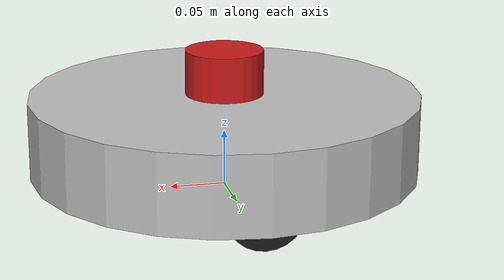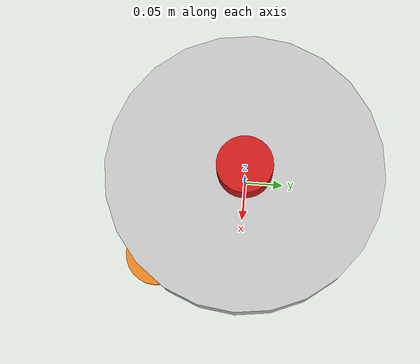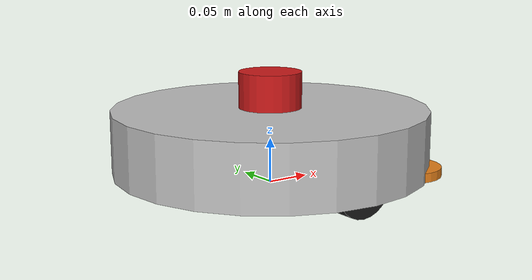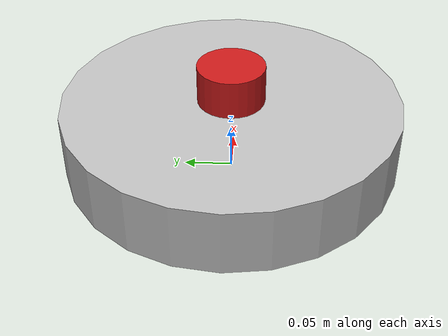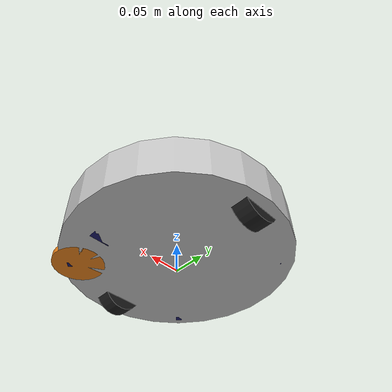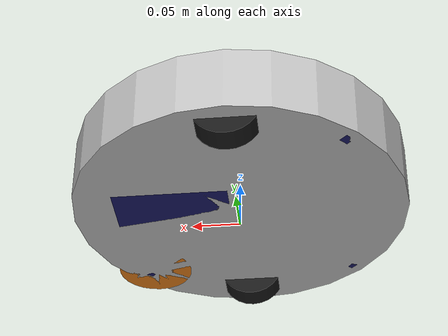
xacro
<?xml version="1.0"?>
<robot xmlns:xacro="http://www.ros.org/wiki/xacro" name="cleaning_robot">

  <!-- Top-level xacro for the autonomous cleaning robot.                  -->
  <!-- Differential-drive base, 350 mm diameter, ~70 mm tall, with a 2D    -->
  <!-- LiDAR, IMU, 4 cliff sensors, and a cleaning unit (vacuum + side     -->
  <!-- brush).                                                             -->
  <!-- To edit robot dimensions/mount positions once the robot is built,   -->
  <!-- edit urdf/common_properties.xacro == that is the single file with   -->
  <!-- all the physical parameters. This file only wires the sub-modules   -->
  <!-- together and should rarely need changes.                           -->
  <!-- Full TF tree:                                                      -->
  <!--   base_footprint                                                    -->
  <!--     to base_link                                                    -->
  <!--          to left_wheel_link                                        -->
  <!--          to right_wheel_link                                       -->
  <!--          to caster_wheel_link                                      -->
  <!--          to laser                                                  -->
  <!--          to imu_link                                               -->
  <!--          to cliff_front_left_link                                  -->
  <!--          to cliff_front_right_link                                 -->
  <!--          to cliff_rear_left_link                                   -->
  <!--          to cliff_rear_right_link                                  -->
  <!--          to vacuum_link                                            -->
  <!--          to side_brush_link                                       -->

  <xacro:include filename="$(find robot_description)/urdf/common_properties.xacro"/>
  <xacro:include filename="$(find robot_description)/urdf/base.xacro"/>
  <xacro:include filename="$(find robot_description)/urdf/lidar.xacro"/>
  <xacro:include filename="$(find robot_description)/urdf/imu.xacro"/>
  <xacro:include filename="$(find robot_description)/urdf/cliff_sensors.xacro"/>
  <xacro:include filename="$(find robot_description)/urdf/cleaning_unit.xacro"/>

</robot>

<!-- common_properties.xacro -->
<robot xmlns:xacro="http://www.ros.org/wiki/xacro">

  <!-- EDIT THIS FILE once the robot is fully built to match real hardware. -->
  <!-- All dimensions are in metres, masses in kg, angles in radians.      -->

  <!-- ================ Chassis (main robot body) ================ -->
  <!-- Robot is a round vacuum-style base: 350 mm diameter, ~70 mm tall. -->
  <xacro:property name="base_diameter"   value="0.350"/>   <!-- measured base diameter -->
  <xacro:property name="base_radius"     value="${base_diameter / 2}"/>
  <xacro:property name="base_height"     value="0.070"/>   <!-- overall chassis height -->
  <xacro:property name="base_mass"       value="2.0"/>     <!-- TODO: update with real measured mass (kg) -->

  <xacro:property name="base_ground_clearance" value="0.015"/> <!-- TODO: measure real ground clearance under chassis -->

  <!-- ================ Wheels (differential drive) ================ -->
  <!-- TODO: replace with real wheel dimensions once motors/wheels are chosen. -->
  <xacro:property name="wheel_radius"    value="0.034"/>
  <xacro:property name="wheel_width"     value="0.026"/>
  <xacro:property name="wheel_mass"      value="0.040"/>

  <xacro:property name="wheel_separation" value="0.290"/>

  <!-- Fore/aft offset of the wheel axle from the chassis centre (base_link).
       0.0 = wheels mounted on the robot's centreline (typical for a round
       vacuum-style differential-drive base). -->
  <xacro:property name="wheel_x_offset"  value="0.0"/>

  <xacro:property name="wheel_z_offset"  value="${wheel_radius - base_ground_clearance}"/>

  <!-- ================ Caster wheel (passive support wheel) ================ -->
  <xacro:property name="caster_radius"   value="0.015"/>
  <xacro:property name="caster_mass"     value="0.030"/>
  <xacro:property name="caster_x_offset" value="${(base_radius - 0.03)}"/> <!-- placed toward the rear -->
  <xacro:property name="caster_z_offset" value="${caster_radius - base_ground_clearance}"/>

  <!-- ================ LiDAR (2D) ================ -->
  <xacro:property name="lidar_radius"    value="0.035"/>
  <xacro:property name="lidar_height"    value="0.040"/>
  <xacro:property name="lidar_mass"      value="0.170"/>  <!-- approx. RPLIDAR C1 mass -->
  <xacro:property name="lidar_x_offset"  value="0.0"/>
  <xacro:property name="lidar_y_offset"  value="0.0"/>
  <xacro:property name="lidar_z_offset"  value="${(base_height / 2) + (lidar_height / 2)}"/>

  <!-- ================ IMU ================ -->
  <!-- TODO: update to the exact IMU mounting position. Mounting the IMU as
       close to the robot's centre of rotation (base_link) as possible
       generally gives the best odometry fusion results. -->
  <xacro:property name="imu_size"        value="0.020"/>  <!-- small cube approximation -->
  <xacro:property name="imu_mass"        value="0.010"/>
  <xacro:property name="imu_x_offset"    value="0.0"/>
  <xacro:property name="imu_y_offset"    value="0.0"/>
  <xacro:property name="imu_z_offset"    value="0.01"/>

  <!-- ================ Cliff sensors (IR / ToF drop sensors) ================ -->
  <xacro:property name="cliff_size"          value="0.010"/> <!-- small cube approximation -->
  <xacro:property name="cliff_mass"          value="0.005"/>
  <xacro:property name="cliff_mount_radius"  value="${base_radius - 0.015}"/> <!-- near chassis edge -->
  <xacro:property name="cliff_z_offset"      value="${-(base_height / 2) + 0.005}"/> <!-- near chassis underside -->

  <!-- Angles (from +X / front, counter-clockwise) for the 4 cliff sensors. -->
  <xacro:property name="cliff_front_left_angle"   value="${radians(45)}"/>
  <xacro:property name="cliff_front_right_angle"  value="${radians(-45)}"/>
  <xacro:property name="cliff_rear_left_angle"    value="${radians(135)}"/>
  <xacro:property name="cliff_rear_right_angle"   value="${radians(-135)}"/>

  <!-- ================ Cleaning unit: vacuum + side brush ================ -->
  <!-- TODO: update once the vacuum housing and side brush motor are finalised. -->
  <xacro:property name="vacuum_length"   value="0.120"/>
  <xacro:property name="vacuum_width"    value="0.080"/>
  <xacro:property name="vacuum_height"   value="0.040"/>
  <xacro:property name="vacuum_mass"     value="0.200"/>
  <!-- Vacuum inlet is mounted centrally underneath, toward the front. -->
  <xacro:property name="vacuum_x_offset" value="${base_radius * 0.4}"/>
  <xacro:property name="vacuum_y_offset" value="0.0"/>
  <xacro:property name="vacuum_z_offset" value="${-(base_height / 2) + (vacuum_height / 2)}"/>

  <xacro:property name="side_brush_radius" value="0.040"/>
  <xacro:property name="side_brush_height" value="0.010"/>
  <xacro:property name="side_brush_mass"   value="0.030"/>
  <xacro:property name="side_brush_x_offset" value="${base_radius * 0.6}"/>
  <xacro:property name="side_brush_y_offset" value="${-(base_radius * 0.6)}"/>  <!-- negative = right side -->
  <xacro:property name="side_brush_z_offset" value="${-(base_height / 2) + (side_brush_height / 2)}"/>

  <!-- ================ Materials (RViz colours only, no physical meaning) ================ -->
  <material name="chassis_grey">
    <color rgba="0.75 0.75 0.75 1.0"/>
  </material>
  <material name="wheel_black">
    <color rgba="0.1 0.1 0.1 1.0"/>
  </material>
  <material name="sensor_dark_blue">
    <color rgba="0.1 0.1 0.4 1.0"/>
  </material>
  <material name="lidar_red">
    <color rgba="0.8 0.1 0.1 1.0"/>
  </material>
  <material name="brush_orange">
    <color rgba="0.9 0.5 0.1 1.0"/>
  </material>

  <!-- ================ Reusable inertia macros ================ -->
  <xacro:macro name="cylinder_inertia" params="mass radius height">
    <inertia
      ixx="${(1/12) * mass * (3*radius*radius + height*height)}" ixy="0.0" ixz="0.0"
      iyy="${(1/12) * mass * (3*radius*radius + height*height)}" iyz="0.0"
      izz="${(1/2) * mass * radius * radius}"/>
  </xacro:macro>

  <xacro:macro name="sphere_inertia" params="mass radius">
    <inertia
      ixx="${(2/5) * mass * radius * radius}" ixy="0.0" ixz="0.0"
      iyy="${(2/5) * mass * radius * radius}" iyz="0.0"
      izz="${(2/5) * mass * radius * radius}"/>
  </xacro:macro>

  <xacro:macro name="box_inertia" params="mass x y z">
    <inertia
      ixx="${(1/12) * mass * (y*y + z*z)}" ixy="0.0" ixz="0.0"
      iyy="${(1/12) * mass * (x*x + z*z)}" iyz="0.0"
      izz="${(1/12) * mass * (x*x + y*y)}"/>
  </xacro:macro>

</robot>

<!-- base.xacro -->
<robot xmlns:xacro="http://www.ros.org/wiki/xacro">

  <!-- Chassis, drive wheels and passive caster wheel.                     -->
  <!-- TF tree produced by this file:                                      -->
  <!--   base_footprint to base_link to left_wheel_link                    -->
  <!--                              \to right_wheel_link                   -->
  <!--                              \to caster_wheel_link                  -->

  <!-- base_footprint: virtual frame on the ground plane, directly below
       base_link. This is the standard REP-105 frame used by nav2 /
       robot_localization as the robot's planar pose reference. -->
  <link name="base_footprint"/>

  <joint name="base_footprint_joint" type="fixed">
    <parent link="base_footprint"/>
    <child link="base_link"/>
    <origin xyz="0 0 ${base_ground_clearance + (base_height / 2)}" rpy="0 0 0"/>
  </joint>

  <!-- base_link: main chassis, modelled as a flat cylinder (disc). -->
  <link name="base_link">
    <visual>
      <origin xyz="0 0 0" rpy="0 0 0"/>
      <geometry>
        <cylinder radius="${base_radius}" length="${base_height}"/>
      </geometry>
      <material name="chassis_grey"/>
    </visual>
    <collision>
      <origin xyz="0 0 0" rpy="0 0 0"/>
      <geometry>
        <cylinder radius="${base_radius}" length="${base_height}"/>
      </geometry>
    </collision>
    <inertial>
      <origin xyz="0 0 0" rpy="0 0 0"/>
      <mass value="${base_mass}"/>
      <xacro:cylinder_inertia mass="${base_mass}" radius="${base_radius}" height="${base_height}"/>
    </inertial>
  </link>

  <!-- ================ Drive wheel macro (left/right) ================ -->
  <!-- reflect = +1 for left wheel, -1 for right wheel -->
  <xacro:macro name="drive_wheel" params="prefix reflect">
    <link name="${prefix}_wheel_link">
      <visual>
        <origin xyz="0 0 0" rpy="${pi/2} 0 0"/>
        <geometry>
          <cylinder radius="${wheel_radius}" length="${wheel_width}"/>
        </geometry>
        <material name="wheel_black"/>
      </visual>
      <collision>
        <origin xyz="0 0 0" rpy="${pi/2} 0 0"/>
        <geometry>
          <cylinder radius="${wheel_radius}" length="${wheel_width}"/>
        </geometry>
      </collision>
      <inertial>
        <origin xyz="0 0 0" rpy="${pi/2} 0 0"/>
        <mass value="${wheel_mass}"/>
        <xacro:cylinder_inertia mass="${wheel_mass}" radius="${wheel_radius}" height="${wheel_width}"/>
      </inertial>
    </link>

    <!-- Continuous joint: wheel spins freely about its own Y axis.
         Wheel odometry/velocity is driven externally (e.g. by mcu_bridge /
         a diff-drive controller), not by this URDF. -->
    <joint name="${prefix}_wheel_joint" type="continuous">
      <parent link="base_link"/>
      <child link="${prefix}_wheel_link"/>
      <origin xyz="${wheel_x_offset} ${reflect * (wheel_separation / 2)} ${-wheel_z_offset}" rpy="0 0 0"/>
      <axis xyz="0 1 0"/>
    </joint>
  </xacro:macro>

  <xacro:drive_wheel prefix="left"  reflect="1"/>
  <xacro:drive_wheel prefix="right" reflect="-1"/>

  <!-- ================ Passive caster wheel ================ -->
  <!-- Modelled as a sphere so it doesn't add a steering DOF; mount as a
       fixed joint since it's a free-rolling ball/roller caster in practice. -->
  <link name="caster_wheel_link">
    <visual>
      <origin xyz="0 0 0" rpy="0 0 0"/>
      <geometry>
        <sphere radius="${caster_radius}"/>
      </geometry>
      <material name="wheel_black"/>
    </visual>
    <collision>
      <origin xyz="0 0 0" rpy="0 0 0"/>
      <geometry>
        <sphere radius="${caster_radius}"/>
      </geometry>
    </collision>
    <inertial>
      <origin xyz="0 0 0" rpy="0 0 0"/>
      <mass value="${caster_mass}"/>
      <xacro:sphere_inertia mass="${caster_mass}" radius="${caster_radius}"/>
    </inertial>
  </link>

  <joint name="caster_wheel_joint" type="fixed">
    <parent link="base_link"/>
    <child link="caster_wheel_link"/>
    <origin xyz="${caster_x_offset} 0 ${-caster_z_offset}" rpy="0 0 0"/>
  </joint>

</robot>

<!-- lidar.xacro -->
<robot xmlns:xacro="http://www.ros.org/wiki/xacro">

  <!-- 2D LiDAR sensor frame.                                               -->
  <!-- TF tree produced by this file:                                      -->
  <!--   base_link to laser                                                -->
  <!-- NOTE: frame name "laser" matches the frame_id already used by       -->
  <!-- lidar_bringup / rplidar_ros. Once this URDF is loaded via           -->
  <!-- robot_state_publisher, remove the static_transform_publisher node   -->
  <!-- in lidar_bringup/launch/lidar.launch.py so there is only one        -->
  <!-- source of truth for base_link to laser.                            -->

  <link name="laser">
    <visual>
      <origin xyz="0 0 0" rpy="0 0 0"/>
      <geometry>
        <cylinder radius="${lidar_radius}" length="${lidar_height}"/>
      </geometry>
      <material name="lidar_red"/>
    </visual>
    <collision>
      <origin xyz="0 0 0" rpy="0 0 0"/>
      <geometry>
        <cylinder radius="${lidar_radius}" length="${lidar_height}"/>
      </geometry>
    </collision>
    <inertial>
      <origin xyz="0 0 0" rpy="0 0 0"/>
      <mass value="${lidar_mass}"/>
      <xacro:cylinder_inertia mass="${lidar_mass}" radius="${lidar_radius}" height="${lidar_height}"/>
    </inertial>
  </link>

  <joint name="laser_joint" type="fixed">
    <parent link="base_link"/>
    <child link="laser"/>
    <!-- yaw=0 assumes the LiDAR's 0-degree mark points toward the robot's
         front (+X). Rotate here (not in the driver) if it's mounted rotated. -->
    <origin xyz="${lidar_x_offset} ${lidar_y_offset} ${lidar_z_offset}" rpy="0 0 0"/>
  </joint>

</robot>

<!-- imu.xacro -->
<robot xmlns:xacro="http://www.ros.org/wiki/xacro">

  <!-- IMU sensor frame.                                                   -->
  <!-- TF tree produced by this file:                                      -->
  <!--   base_link to imu_link                                             -->

  <link name="imu_link">
    <visual>
      <origin xyz="0 0 0" rpy="0 0 0"/>
      <geometry>
        <box size="${imu_size} ${imu_size} ${imu_size}"/>
      </geometry>
      <material name="sensor_dark_blue"/>
    </visual>
    <collision>
      <origin xyz="0 0 0" rpy="0 0 0"/>
      <geometry>
        <box size="${imu_size} ${imu_size} ${imu_size}"/>
      </geometry>
    </collision>
    <inertial>
      <origin xyz="0 0 0" rpy="0 0 0"/>
      <mass value="${imu_mass}"/>
      <xacro:box_inertia mass="${imu_mass}" x="${imu_size}" y="${imu_size}" z="${imu_size}"/>
    </inertial>
  </link>

  <joint name="imu_joint" type="fixed">
    <parent link="base_link"/>
    <child link="imu_link"/>
    <origin xyz="${imu_x_offset} ${imu_y_offset} ${imu_z_offset}" rpy="0 0 0"/>
  </joint>

</robot>

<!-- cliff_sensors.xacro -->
<robot xmlns:xacro="http://www.ros.org/wiki/xacro">

  <!-- Cliff (drop) sensors: IR / ToF sensors facing the floor to detect    -->
  <!-- stairs/ledges at the chassis edge.                                   -->
  <!-- TF tree produced by this file (all children of base_link):          -->
  <!--   base_link to cliff_front_left_link                                -->
  <!--   base_link to cliff_front_right_link                               -->
  <!--   base_link to cliff_rear_left_link                                 -->
  <!--   base_link to cliff_rear_right_link                                -->
  <!-- To add more cliff sensors (e.g. a 5th centre-front sensor), add a    -->
  <!-- new angle property in common_properties.xacro and a new             -->
  <!-- need to change.                                                     -->

  <xacro:macro name="cliff_sensor" params="name angle">
    <link name="cliff_${name}_link">
      <visual>
        <origin xyz="0 0 0" rpy="0 0 0"/>
        <geometry>
          <box size="${cliff_size} ${cliff_size} ${cliff_size}"/>
        </geometry>
        <material name="sensor_dark_blue"/>
      </visual>
      <collision>
        <origin xyz="0 0 0" rpy="0 0 0"/>
        <geometry>
          <box size="${cliff_size} ${cliff_size} ${cliff_size}"/>
        </geometry>
      </collision>
      <inertial>
        <origin xyz="0 0 0" rpy="0 0 0"/>
        <mass value="${cliff_mass}"/>
        <xacro:box_inertia mass="${cliff_mass}" x="${cliff_size}" y="${cliff_size}" z="${cliff_size}"/>
      </inertial>
    </link>

    <joint name="cliff_${name}_joint" type="fixed">
      <parent link="base_link"/>
      <child link="cliff_${name}_link"/>
      <!-- pitch = pi/2 points the sensor's +Z (its "forward"/sensing axis)
           straight down toward the floor. -->
      <origin xyz="${cliff_mount_radius * cos(angle)} ${cliff_mount_radius * sin(angle)} ${cliff_z_offset}"
              rpy="0 ${pi/2} ${angle}"/>
    </joint>
  </xacro:macro>

  <xacro:cliff_sensor name="front_left"  angle="${cliff_front_left_angle}"/>
  <xacro:cliff_sensor name="front_right" angle="${cliff_front_right_angle}"/>
  <xacro:cliff_sensor name="rear_left"   angle="${cliff_rear_left_angle}"/>
  <xacro:cliff_sensor name="rear_right"  angle="${cliff_rear_right_angle}"/>

</robot>

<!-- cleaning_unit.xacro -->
<robot xmlns:xacro="http://www.ros.org/wiki/xacro">

  <!-- Cleaning unit: vacuum housing/inlet + rotating side brush.           -->
  <!-- TF tree produced by this file (all children of base_link):          -->
  <!--   base_link to vacuum_link                                          -->
  <!--   base_link to side_brush_link                                      -->
  <!-- These are geometry/TF placeholders only == no ros2_control/transmission -->
  <!-- vacuum motor and brush motor are wired up and need to be commanded. -->

  <!-- ================ Vacuum housing / suction inlet ================ -->
  <link name="vacuum_link">
    <visual>
      <origin xyz="0 0 0" rpy="0 0 0"/>
      <geometry>
        <box size="${vacuum_length} ${vacuum_width} ${vacuum_height}"/>
      </geometry>
      <material name="sensor_dark_blue"/>
    </visual>
    <collision>
      <origin xyz="0 0 0" rpy="0 0 0"/>
      <geometry>
        <box size="${vacuum_length} ${vacuum_width} ${vacuum_height}"/>
      </geometry>
    </collision>
    <inertial>
      <origin xyz="0 0 0" rpy="0 0 0"/>
      <mass value="${vacuum_mass}"/>
      <xacro:box_inertia mass="${vacuum_mass}" x="${vacuum_length}" y="${vacuum_width}" z="${vacuum_height}"/>
    </inertial>
  </link>

  <joint name="vacuum_joint" type="fixed">
    <parent link="base_link"/>
    <child link="vacuum_link"/>
    <origin xyz="${vacuum_x_offset} ${vacuum_y_offset} ${vacuum_z_offset}" rpy="0 0 0"/>
  </joint>

  <!-- ================ Side brush ================ -->
  <link name="side_brush_link">
    <visual>
      <origin xyz="0 0 0" rpy="0 0 0"/>
      <geometry>
        <cylinder radius="${side_brush_radius}" length="${side_brush_height}"/>
      </geometry>
      <material name="brush_orange"/>
    </visual>
    <collision>
      <origin xyz="0 0 0" rpy="0 0 0"/>
      <geometry>
        <cylinder radius="${side_brush_radius}" length="${side_brush_height}"/>
      </geometry>
    </collision>
    <inertial>
      <origin xyz="0 0 0" rpy="0 0 0"/>
      <mass value="${side_brush_mass}"/>
      <xacro:cylinder_inertia mass="${side_brush_mass}" radius="${side_brush_radius}" height="${side_brush_height}"/>
    </inertial>
  </link>

  <joint name="side_brush_joint" type="continuous">
    <parent link="base_link"/>
    <child link="side_brush_link"/>
    <origin xyz="${side_brush_x_offset} ${side_brush_y_offset} ${side_brush_z_offset}" rpy="0 0 0"/>
    <axis xyz="0 0 1"/>
  </joint>

</robot>
